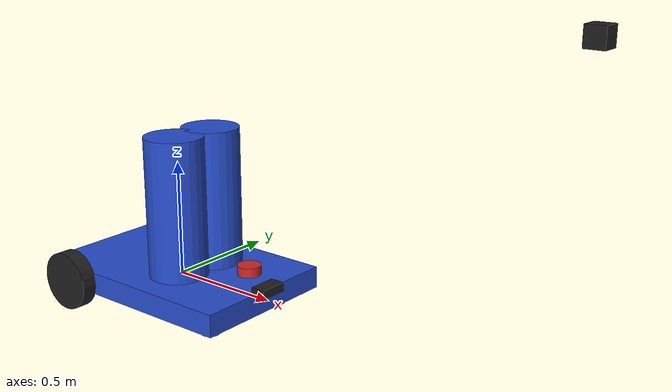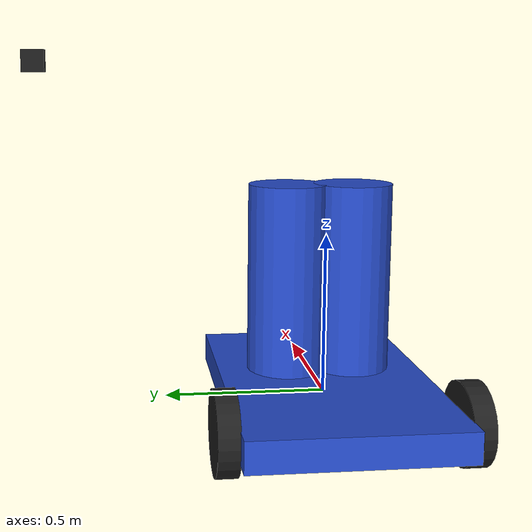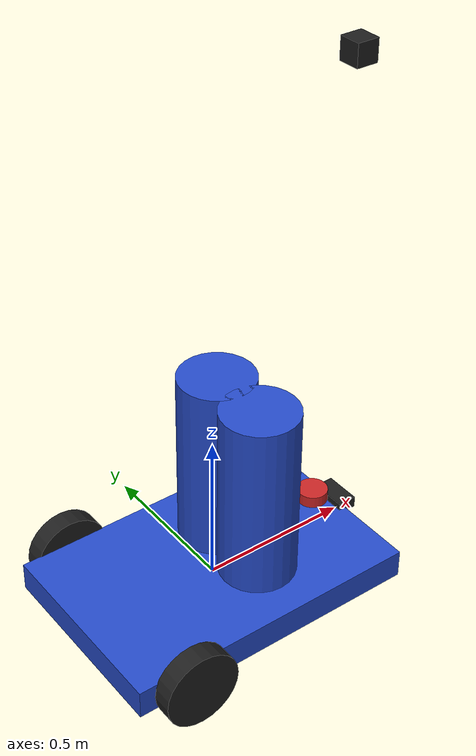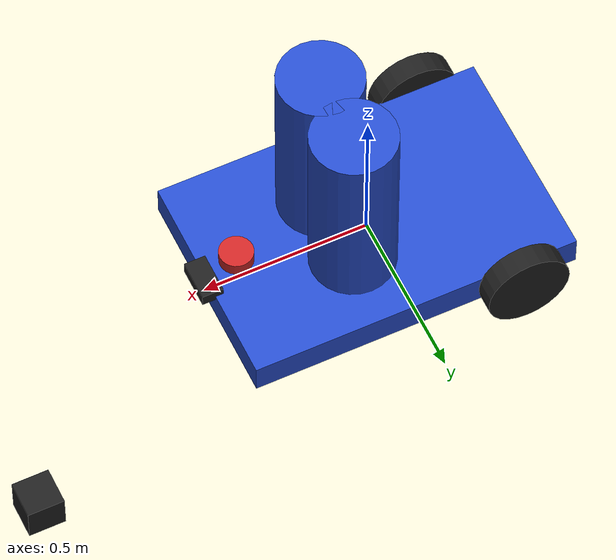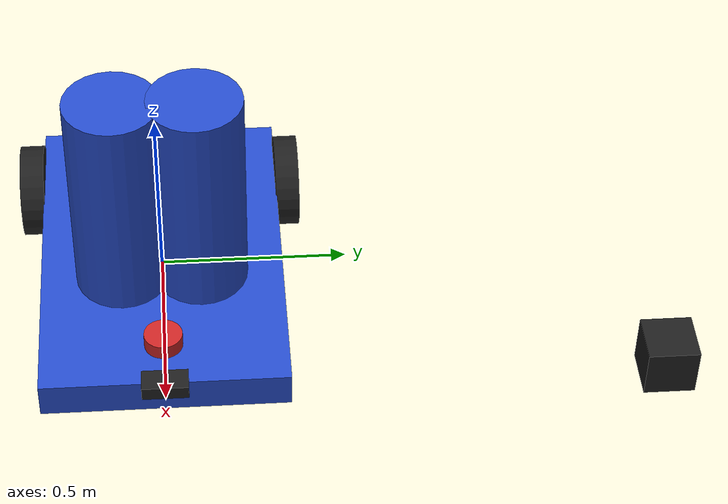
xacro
<?xml version='1.0'?>
<robot name="myrobot" xmlns:xacro="http://www.ros.org/wiki/xacro">
    <xacro:include filename="$(find hummanoid)/urdf/my_robot.gazebo" />

    <link name='chassis'>
        <pose>0 0 0.1 0 0 0</pose>
        <inertial>
            <mass value="10.0" />
            <origin xyz="0.0 0 0.1" rpy=" 0 0 0" />
            <inertia
                ixx="0.1" ixy="0" ixz="0"
                iyy="0.1" iyz="0"
                izz="0.1"
            />
        </inertial>
        <collision name='collision'>
            <geometry>
                <box size=".984 .65 .095" />
            </geometry>
        </collision>
        <visual name='chassis_visual'>
            <origin xyz="0 0 0" rpy=" 0 0 0" />
            <geometry>
                <box size=".984 .65 .095" />
            </geometry>
        </visual>
    </link>
    <link name='lidar_bed'>
        <collision>
            <origin xyz="0.0 0.0 0.0" rpy="0.0 0.0 0.0" />
            <geometry>
                <box size="0.1 0.1 0.1" />
            </geometry>
        </collision>
        <visual>
            <origin xyz="0.0 0.0 0.0" rpy="0.0 0.0 0.0" />
            <geometry>
                <box size="0.1 0.1 0.1" />
            </geometry>
            <material>

            </material>
        </visual>
    </link>
    <joint name='lidar_bed_to_chassis' type='fixed'>
        <origin xyz="1.4 1.0 1.05" rpy="0 0 0" />
        <child link="lidar_bed" />
        <parent link="chassis" />
        <axis xyz="0 0 0" rpy="0 0 0" />
    </joint>
    <link name='caster_right'>
        <collision>
            <origin xyz="0 0 0" rpy=" 0 0 0" />
            <geometry>
                <sphere radius="0.07" />
            </geometry>
        </collision>
        <visual>
            <origin xyz="0 0 0" rpy=" 0 0 0" />
            <geometry>
                <sphere radius="0.07" />
            </geometry>
        </visual>
    </link>
    <joint name="caster_right_to_chassis" type="fixed">
        <origin xyz="0.367135 0.2 -0.05" rpy="0 0 0" />
        <child link="caster_right" />
        <parent link="chassis" />
        <axis xyz="0 1 0" rpy="0 0 0" />
        <joint_properties damping="0.0" friction="0.0" />
    </joint>
    <link name='caster_left'>
        <collision>
            <origin xyz="0 0 0" rpy=" 0 0 0" />
            <geometry>
                <sphere radius="0.07" />
            </geometry>
        </collision>
        <visual>
            <origin xyz="0 0 0" rpy=" 0 0 0" />
            <geometry>
                <sphere radius="0.07" />
            </geometry>
        </visual>
    </link>
    <joint name='caster_leftt_to_chassis' type='fixed'>
        <origin xyz="0.367135 -0.2 -0.05" rpy="0 0 0" />
        <child link="caster_left" />
        <parent link="chassis" />
        <axis xyz="0 1 0" rpy="0 0 0" />
        <joint_properties damping="0.0" friction="0.0" />
    </joint>
    <link name="left_wheel">
        <collision name="collision">
            <origin xyz="0 0 0" rpy="0 1.5707 1.5707" />
            <geometry>
                <cylinder radius="0.125" length="0.065" />
            </geometry>
        </collision>
        <visual name="left_wheel_visual">
            <origin xyz="0 0 0" rpy="0 1.5707 1.5707" />
            <geometry>
                <cylinder radius="0.125" length="0.065" />
            </geometry>
        </visual>
        <inertial>
            <origin xyz="0 0 0" rpy="0 1.5707 1.5707" />
            <mass value="1" />
            <inertia
                ixx=".1" ixy="0.0" ixz="0.0"
                iyy=".1" iyz="0.0"
                izz=".1" />
        </inertial>
    </link>
    <link name="right_wheel">
        <collision name="collision">
            <origin xyz="0 0 0" rpy="0 1.5707 1.5707" />
            <geometry>
                <cylinder radius="0.125" length="0.065" />
            </geometry>
        </collision>
        <visual name="right_wheel_visual">
            <origin xyz="0 0 0" rpy="0 1.5707 1.5707" />
            <geometry>
                <cylinder radius="0.125" length="0.065" />
            </geometry>
        </visual>
        <inertial>
            <origin xyz="0 0 0" rpy="0 1.5707 1.5707" />
            <mass value="1" />
            <inertia
                ixx=".1" ixy="0.0" ixz="0.0"
                iyy=".1" iyz="0.0"
                izz=".1" />
        </inertial>
    </link>
    <joint type="continuous" name="left_wheel_hinge">
        <origin xyz="-0.315 -0.355 0.0" rpy="0 0 0" />
        <child link="left_wheel" />
        <parent link="chassis" />
        <axis xyz="0 1 0" rpy="0 0 0" />
        <joint_properties damping="0.0" friction="0.0" />
    </joint>
    <joint type="continuous" name="right_wheel_hinge">
        <origin xyz="-0.315 0.355 0.0" rpy="0 0 0" />
        <child link="right_wheel" />
        <parent link="chassis" />
        <axis xyz="0 1 0" rpy="0 0 0" />
        <joint_properties damping="0.0" friction="0.0" />
    </joint>
    <link name="kinect_link">
        <visual>
            <geometry>
                <box size="0.064 0.121 0.0381" />
            </geometry>
        </visual>
        <collision>
            <geometry>
                <box size="0.064 0.121 0.0381" />
            </geometry>
            <material name="Black" />
        </collision>
        <inertial>
            <mass value="0.0001" />
            <origin xyz="0 0 0" />
            <inertia ixx="0.0001" ixy="0.0" ixz="0.0"
                iyy="0.0001" iyz="0.0"
                izz="0.0001" />
        </inertial>
    </link>
    <joint name="kinect_depth_joint" type="fixed">
        <origin xyz="0 0.028 0" rpy="0 0 0" />
        <parent link="kinect_link" />
        <child link="kinect_depth_frame" />
    </joint>
    <link name="kinect_depth_frame">
        <inertial>
            <mass value="0.0001" />
            <origin xyz="0 0 0" />
            <inertia ixx="0.0001" ixy="0.0" ixz="0.0"
                iyy="0.0001" iyz="0.0"
                izz="0.0001" />
        </inertial>
    </link>
    <joint name="depth_optical_joint" type="fixed">
        <origin xyz="0 0 0" rpy="0 0 0" />
        <parent link="kinect_depth_frame" />
        <child link="kinect_depth_optical_frame" />
    </joint>
    <link name="kinect_depth_optical_frame">
        <inertial>
            <mass value="0.0001" />
            <origin xyz="0 0 0" />
            <inertia ixx="0.0001" ixy="0.0" ixz="0.0"
                iyy="0.0001" iyz="0.0"
                izz="0.0001" />
        </inertial>
    </link>
    <joint name="base_link_to_kinect_link" type="fixed">
        <parent link="chassis" />
        <child link="kinect_link" />
        <origin rpy="0 0 0" xyz="0.5 0 0.05155" />
    </joint>
    <link name="leg1">
        <visual>
            <origin rpy="0 0 0" xyz="0 0 0" />
            <geometry>
                <cylinder radius="0.125" length="0.6" />
            </geometry>
        </visual>
        <collision>
            <origin rpy="0 0 0" xyz="0 0 0" />
            <geometry>
                <cylinder radius="0.125" length="0.6" />
            </geometry>
        </collision>
        <inertial>
            <mass value="5" />
            <origin xyz="0 0 0" rpy="0 0 0" />
            <inertia ixx="0.03" iyy="0.03" izz="0.03" ixy="0.0" ixz="0.0" iyz="0.0" />
        </inertial>
    </link>
    <link name="leg2">
        <visual>
            <origin rpy="0 0 0" xyz="0 0 0" />
            <geometry>
                <cylinder radius="0.125" length="0.6" />
            </geometry>
        </visual>
        <collision>
            <origin rpy="0 0 0" xyz="0 0 0" />
            <geometry>
                <cylinder radius="0.125" length="0.6" />
            </geometry>
            <color rgba="0 0 1 1" />
        </collision>
        <inertial>
            <mass value="5" />
            <origin xyz="0 0 0" rpy="0 0 0" />
            <inertia ixx="0.03" iyy="0.03" izz="0.03" ixy="0.0" ixz="0.0" iyz="0.0" />
        </inertial>
    </link>
    <joint name="base_link_leg1" type="fixed">
        <origin xyz="0.09375 0.105 0.35" rpy="0 0 0" />
        <parent link="chassis" />
        <child link="leg1" />
        <limit effort="30" velocity="1.0" lower="-1.57" upper="1.57" />
        <axis xyz="0 0 1" />
    </joint>
    <joint name="base_link_leg2" type="fixed">
        <origin xyz="0.09375 -0.105 0.35" rpy="0 0 0" />
        <parent link="chassis" />
        <child link="leg2" />
        <limit effort="30" velocity="1.0" lower="-1.57" upper="1.57" />
        <axis xyz="0 0 1" />
    </joint>

    <!-- Hokuyo Laser -->
    <link name="hokuyo_link">
        <collision>
            <origin xyz="0 0 0" rpy="0 0 0" />
            <geometry>
                <cylinder radius="0.05" length="0.04" />
            </geometry>
        </collision>
        <visual>
            <origin xyz="0 0 0" rpy="0 0 0" />
            <geometry>
                <cylinder radius="0.05" length="0.04" />
            </geometry>
        </visual>
        <inertial>
            <mass value="0.5" />
            <origin xyz="0 0 0" rpy="0 0 0" />
            <inertia ixx="1e-6" ixy="0" ixz="0" iyy="1e-6" iyz="0" izz="1e-6" />
        </inertial>
    </link>
    <joint name="hokuyo_joint" type="fixed">
        <axis xyz="0 1 0" />
        <origin xyz="0.4 0.0 0.114" rpy="0 0 0" />
        <parent link="chassis" />
        <child link="hokuyo_link" />
    </joint>

</robot>
